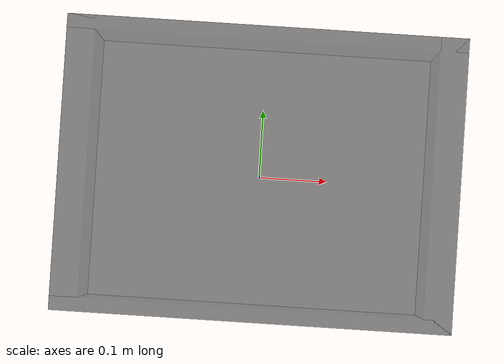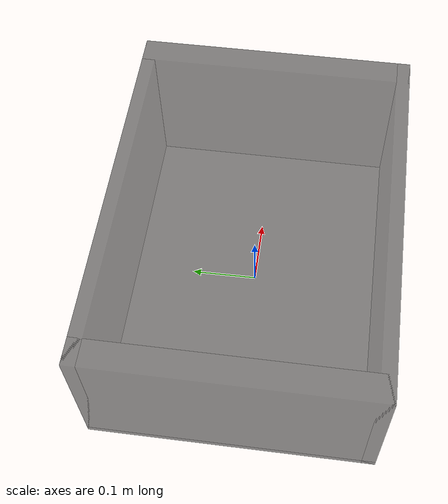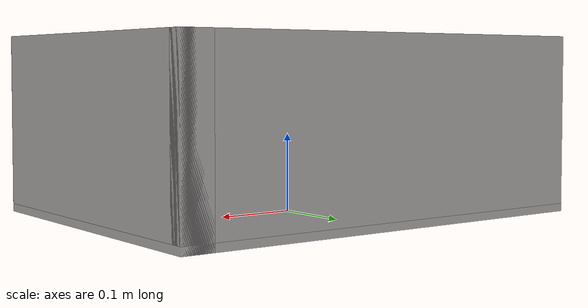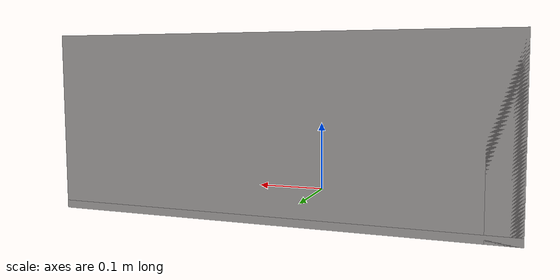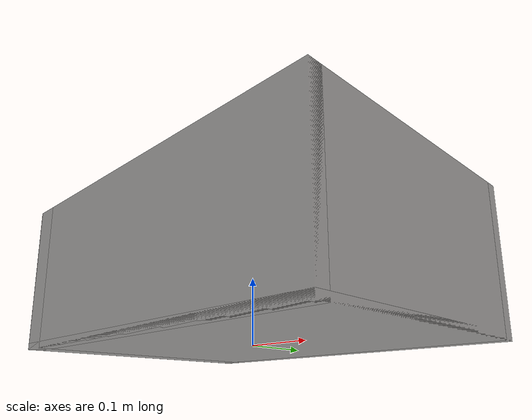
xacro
<?xml version="1.0"?>
<robot name="box_0" xmlns:xacro="http://ros.org/wiki/xacro" >

    <link name='box_0_link'>
        <inertial>
            <origin xyz="0 0 0" rpy="0 0 0" />
                <mass value="0.0000001" />
                <inertia
                    ixx="0.00000001"
                    ixy="0"
                    ixz="0"
                    iyy="0.00000001"
                    iyz="0"
                    izz="0.0000001" />
        </inertial>

        <!-- 构建底板 -->
        <visual>
            <origin xyz='0.0 0.0 0.005' rpy='0.0 0.0 0.0'/>
            <geometry>
                <box size="0.57 0.42 0.01"/>
            </geometry>
            <material name='black'>
                <color rgba='0.0 0.0 0.0 0.5'/>
            </material>
        </visual>
        <collision>
            <origin xyz='0.0 0.0 0.005' rpy='0.0 0.0 0.0'/>
            <geometry>
                <box size="0.57 0.42 0.01"/>
            </geometry>
        </collision>

        <!-- 构建长侧板一 -->
        <visual>
            <origin xyz='0.0 0.2 0.1125' rpy='0.0 0.0 0.0'/>
            <geometry>
                <box size="0.57 0.02 0.225"/>
            </geometry>
            <material name='black'>
                <color rgba='0.0 0.0 0.0 0.5'/>
            </material>
        </visual>
        <collision>
            <origin xyz='0.0 0.2 0.1125' rpy='0.0 0.0 0.0'/>
            <geometry>
                <box size="0.57 0.02 0.225"/>
            </geometry>
        </collision>

        <!-- 构建长侧板二 -->
        <visual>
            <origin xyz='0.0 -0.2 0.1125' rpy='0.0 0.0 0.0'/>
            <geometry>
                <box size="0.57 0.02 0.225"/>
            </geometry>
            <material name='black'>
                <color rgba='0.0 0.0 0.0 0.5'/>
            </material>
        </visual>
        <collision>
            <origin xyz='0.0 -0.2 0.1125' rpy='0.0 0.0 0.0'/>
            <geometry>
                <box size="0.57 0.02 0.225"/>
            </geometry>
        </collision>

        <!-- 构建短侧板一 -->
        <visual>
            <origin xyz='0.265 0.0 0.1125' rpy='0.0 0.0 0.0'/>
            <geometry>
                <box size="0.04 0.42 0.225"/>
            </geometry>
            <material name='black'>
                <color rgba='0.0 0.0 0.0 0.5'/>
            </material>
        </visual>
        <collision>
            <origin xyz='0.265 0.0 0.1125' rpy='0.0 0.0 0.0'/>
            <geometry>
                <box size="0.04 0.42 0.225"/>
            </geometry>
        </collision>

        <!-- 构建短侧板二 -->
        <visual>
            <origin xyz='-0.265 0.0 0.1125' rpy='0.0 0.0 0.0'/>
            <geometry>
                <box size="0.04 0.42 0.225"/>
            </geometry>
            <material name='black'>
                <color rgba='0.0 0.0 0.0 0.5'/>
            </material>
        </visual>
        <collision>
            <origin xyz='-0.265 0.0 0.1125' rpy='0.0 0.0 0.0'/>
            <geometry>
                <box size="0.04 0.42 0.225"/>
            </geometry>
        </collision>
    </link>

</robot>
